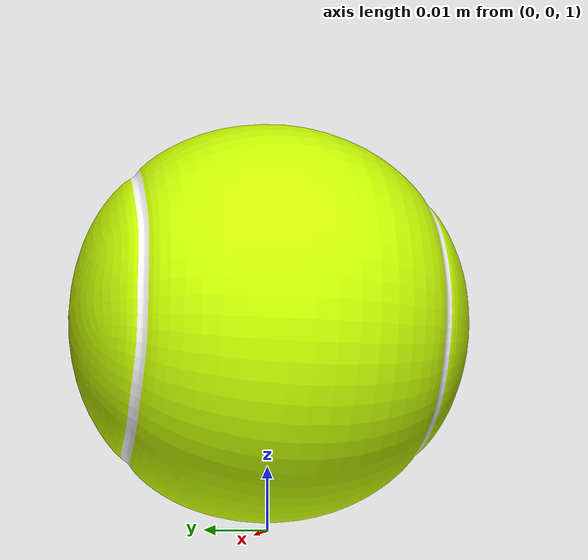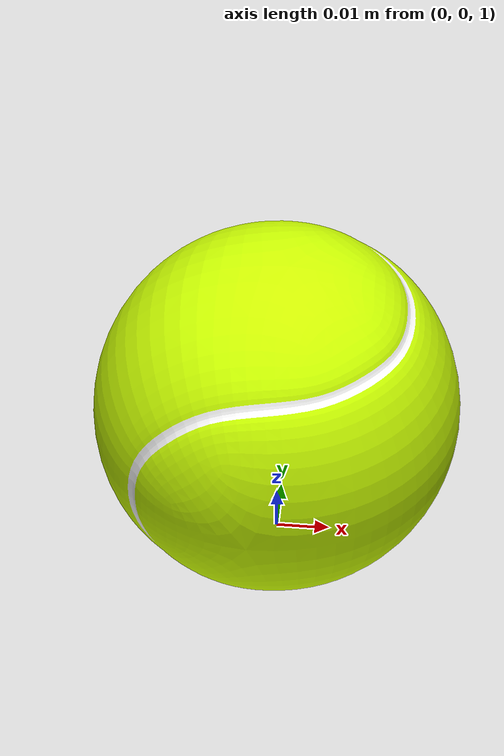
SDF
<?xml version='1.0'?>
<sdf version="1.5">
  <model name="tennis_fluorescent_yellow">
    <static>false</static>

    <link name="ball">
      <pose>0 0 1 0 0 0</pose>

      <collision name="collision">
        <geometry>
            <mesh><uri>model://tennis_fluorescent_yellow/tennis_fluorescent_yellow.dae</uri></mesh>
        </geometry>
        <surface>
            <bounce>
              <restitution_coefficient>0.725</restitution_coefficient>
              <threshold>0</threshold>
            </bounce>
            <contact>
              <ode>
                <max_vel>10</max_vel>
              </ode>
            </contact>
          </surface>
      </collision>

      <visual name="visual">
        <geometry>
            <mesh><uri>model://tennis_fluorescent_yellow/tennis_fluorescent_yellow.dae</uri></mesh>
        </geometry>
      </visual>

      <inertial>
        <mass>0.055</mass>
        <inertia>
          <ixx>5.195272</ixx>
          <ixy>0</ixy>
          <ixz>0</ixz>
          <iyy>5.156815</iyy>
          <iyz>0</iyz>
          <izz>5.156814</izz>
        </inertia>
      </inertial>

    </link>
  </model>
</sdf>
